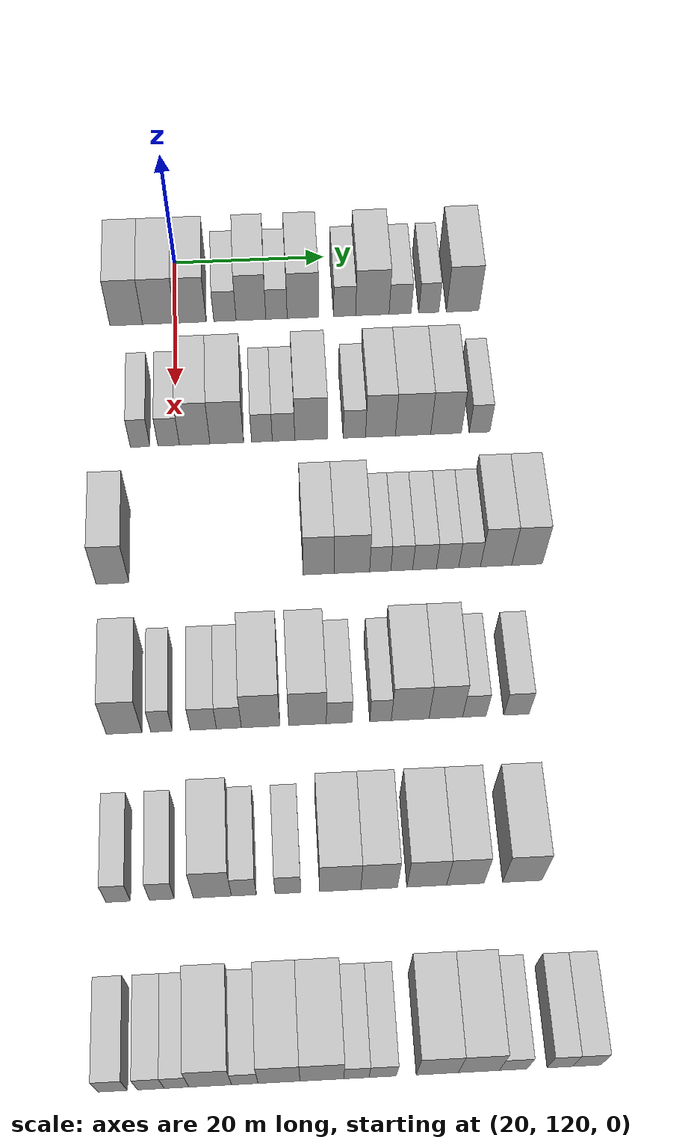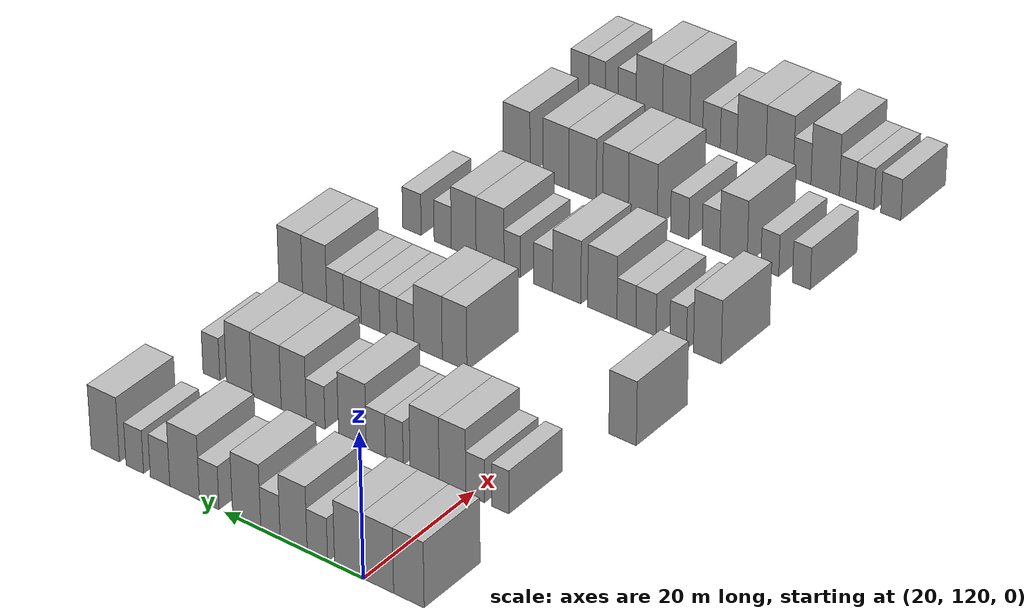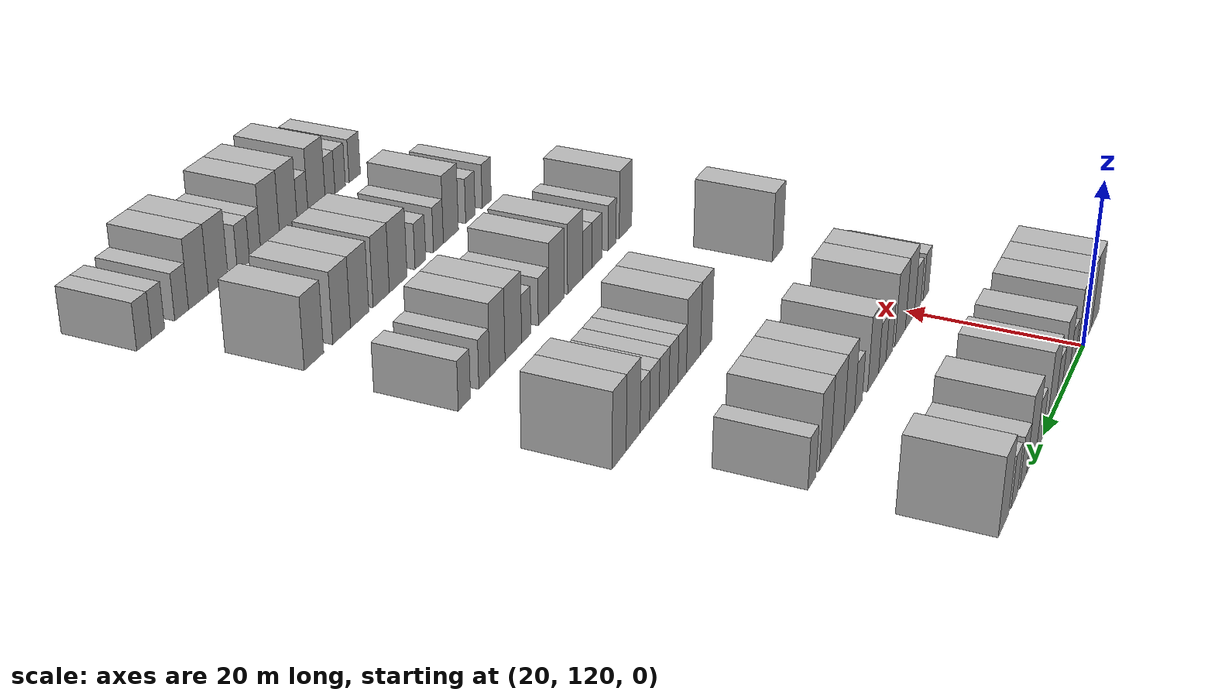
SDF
<sdf version="1.6">
 <world name="default">
  <model name="building_115">
   <static>1</static>
   <pose>25.0000 113.6145 0 0.000000 0.000000 0.000000</pose>
   <link name="link">
    <pose>0 0 4.50 0 0 0</pose>
    <collision name="collision"><geometry><box><size>10.0000 4.2600 9.0000</size></box></geometry></collision>
    <visual name="visual">
     <cast_shadows>0</cast_shadows>
     <geometry><box><size>10.0000 4.2600 9.0000</size></box></geometry>
     <material>
      <script>
       <uri>model://HANNAS_wall/materials/scripts</uri>
       <uri>model://HANNAS_wall/materials/textures</uri>
       <name>vrc/HANNAS_wall</name>
      </script>
     </material>
    </visual>
   </link>
  </model>
  <model name="building_116">
   <static>1</static>
   <pose>25.0000 117.8980 0 0.000000 0.000000 0.000000</pose>
   <link name="link">
    <pose>0 0 4.50 0 0 0</pose>
    <collision name="collision"><geometry><box><size>10.0000 4.3071 9.0000</size></box></geometry></collision>
    <visual name="visual">
     <cast_shadows>0</cast_shadows>
     <geometry><box><size>10.0000 4.3071 9.0000</size></box></geometry>
     <material>
      <script>
       <uri>model://HANNAS_wall/materials/scripts</uri>
       <uri>model://HANNAS_wall/materials/textures</uri>
       <name>vrc/HANNAS_wall</name>
      </script>
     </material>
    </visual>
   </link>
  </model>
  <model name="building_117">
   <static>1</static>
   <pose>25.0000 122.0608 0 0.000000 0.000000 0.000000</pose>
   <link name="link">
    <pose>0 0 4.50 0 0 0</pose>
    <collision name="collision"><geometry><box><size>10.0000 4.0184 9.0000</size></box></geometry></collision>
    <visual name="visual">
     <cast_shadows>0</cast_shadows>
     <geometry><box><size>10.0000 4.0184 9.0000</size></box></geometry>
     <material>
      <script>
       <uri>model://HANNAS_wall/materials/scripts</uri>
       <uri>model://HANNAS_wall/materials/textures</uri>
       <name>vrc/HANNAS_wall</name>
      </script>
     </material>
    </visual>
   </link>
  </model>
  <model name="building_118">
   <static>1</static>
   <pose>25.0000 126.5311 0 0.000000 0.000000 0.000000</pose>
   <link name="link">
    <pose>0 0 3.00 0 0 0</pose>
    <collision name="collision"><geometry><box><size>10.0000 2.9223 6.0000</size></box></geometry></collision>
    <visual name="visual">
     <cast_shadows>0</cast_shadows>
     <geometry><box><size>10.0000 2.9223 6.0000</size></box></geometry>
     <material>
      <script>
       <uri>model://HANNAS_wall/materials/scripts</uri>
       <uri>model://HANNAS_wall/materials/textures</uri>
       <name>vrc/HANNAS_wall</name>
      </script>
     </material>
    </visual>
   </link>
  </model>
  <model name="building_119">
   <static>1</static>
   <pose>25.0000 129.9398 0 0.000000 0.000000 0.000000</pose>
   <link name="link">
    <pose>0 0 4.50 0 0 0</pose>
    <collision name="collision"><geometry><box><size>10.0000 3.8950 9.0000</size></box></geometry></collision>
    <visual name="visual">
     <cast_shadows>0</cast_shadows>
     <geometry><box><size>10.0000 3.8950 9.0000</size></box></geometry>
     <material>
      <script>
       <uri>model://HANNAS_wall/materials/scripts</uri>
       <uri>model://HANNAS_wall/materials/textures</uri>
       <name>vrc/HANNAS_wall</name>
      </script>
     </material>
    </visual>
   </link>
  </model>
  <model name="building_120">
   <static>1</static>
   <pose>25.0000 133.2835 0 0.000000 0.000000 0.000000</pose>
   <link name="link">
    <pose>0 0 3.00 0 0 0</pose>
    <collision name="collision"><geometry><box><size>10.0000 2.7924 6.0000</size></box></geometry></collision>
    <visual name="visual">
     <cast_shadows>0</cast_shadows>
     <geometry><box><size>10.0000 2.7924 6.0000</size></box></geometry>
     <material>
      <script>
       <uri>model://HANNAS_wall/materials/scripts</uri>
       <uri>model://HANNAS_wall/materials/textures</uri>
       <name>vrc/HANNAS_wall</name>
      </script>
     </material>
    </visual>
   </link>
  </model>
  <model name="building_121">
   <static>1</static>
   <pose>25.0000 136.7344 0 0.000000 0.000000 0.000000</pose>
   <link name="link">
    <pose>0 0 4.50 0 0 0</pose>
    <collision name="collision"><geometry><box><size>10.0000 4.1093 9.0000</size></box></geometry></collision>
    <visual name="visual">
     <cast_shadows>0</cast_shadows>
     <geometry><box><size>10.0000 4.1093 9.0000</size></box></geometry>
     <material>
      <script>
       <uri>model://HANNAS_wall/materials/scripts</uri>
       <uri>model://HANNAS_wall/materials/textures</uri>
       <name>vrc/HANNAS_wall</name>
      </script>
     </material>
    </visual>
   </link>
  </model>
  <model name="building_122">
   <static>1</static>
   <pose>25.0000 142.2306 0 0.000000 0.000000 0.000000</pose>
   <link name="link">
    <pose>0 0 3.00 0 0 0</pose>
    <collision name="collision"><geometry><box><size>10.0000 2.8831 6.0000</size></box></geometry></collision>
    <visual name="visual">
     <cast_shadows>0</cast_shadows>
     <geometry><box><size>10.0000 2.8831 6.0000</size></box></geometry>
     <material>
      <script>
       <uri>model://HANNAS_wall/materials/scripts</uri>
       <uri>model://HANNAS_wall/materials/textures</uri>
       <name>vrc/HANNAS_wall</name>
      </script>
     </material>
    </visual>
   </link>
  </model>
  <model name="building_123">
   <static>1</static>
   <pose>25.0000 145.8740 0 0.000000 0.000000 0.000000</pose>
   <link name="link">
    <pose>0 0 4.50 0 0 0</pose>
    <collision name="collision"><geometry><box><size>10.0000 4.4038 9.0000</size></box></geometry></collision>
    <visual name="visual">
     <cast_shadows>0</cast_shadows>
     <geometry><box><size>10.0000 4.4038 9.0000</size></box></geometry>
     <material>
      <script>
       <uri>model://HANNAS_wall/materials/scripts</uri>
       <uri>model://HANNAS_wall/materials/textures</uri>
       <name>vrc/HANNAS_wall</name>
      </script>
     </material>
    </visual>
   </link>
  </model>
  <model name="building_124">
   <static>1</static>
   <pose>25.0000 149.5333 0 0.000000 0.000000 0.000000</pose>
   <link name="link">
    <pose>0 0 3.00 0 0 0</pose>
    <collision name="collision"><geometry><box><size>10.0000 2.9147 6.0000</size></box></geometry></collision>
    <visual name="visual">
     <cast_shadows>0</cast_shadows>
     <geometry><box><size>10.0000 2.9147 6.0000</size></box></geometry>
     <material>
      <script>
       <uri>model://HANNAS_wall/materials/scripts</uri>
       <uri>model://HANNAS_wall/materials/textures</uri>
       <name>vrc/HANNAS_wall</name>
      </script>
     </material>
    </visual>
   </link>
  </model>
  <model name="building_125">
   <static>1</static>
   <pose>25.0000 153.3127 0 0.000000 0.000000 0.000000</pose>
   <link name="link">
    <pose>0 0 3.00 0 0 0</pose>
    <collision name="collision"><geometry><box><size>10.0000 2.6441 6.0000</size></box></geometry></collision>
    <visual name="visual">
     <cast_shadows>0</cast_shadows>
     <geometry><box><size>10.0000 2.6441 6.0000</size></box></geometry>
     <material>
      <script>
       <uri>model://HANNAS_wall/materials/scripts</uri>
       <uri>model://HANNAS_wall/materials/textures</uri>
       <name>vrc/HANNAS_wall</name>
      </script>
     </material>
    </visual>
   </link>
  </model>
  <model name="building_126">
   <static>1</static>
   <pose>25.0000 157.7696 0 0.000000 0.000000 0.000000</pose>
   <link name="link">
    <pose>0 0 4.50 0 0 0</pose>
    <collision name="collision"><geometry><box><size>10.0000 4.2698 9.0000</size></box></geometry></collision>
    <visual name="visual">
     <cast_shadows>0</cast_shadows>
     <geometry><box><size>10.0000 4.2698 9.0000</size></box></geometry>
     <material>
      <script>
       <uri>model://HANNAS_wall/materials/scripts</uri>
       <uri>model://HANNAS_wall/materials/textures</uri>
       <name>vrc/HANNAS_wall</name>
      </script>
     </material>
    </visual>
   </link>
  </model>
  <model name="building_298">
   <static>1</static>
   <pose>44.0000 115.5905 0 0.000000 0.000000 0.000000</pose>
   <link name="link">
    <pose>0 0 3.00 0 0 0</pose>
    <collision name="collision"><geometry><box><size>10.0000 2.4350 6.0000</size></box></geometry></collision>
    <visual name="visual">
     <cast_shadows>0</cast_shadows>
     <geometry><box><size>10.0000 2.4350 6.0000</size></box></geometry>
     <material>
      <script>
       <uri>model://HANNAS_wall/materials/scripts</uri>
       <uri>model://HANNAS_wall/materials/textures</uri>
       <name>vrc/HANNAS_wall</name>
      </script>
     </material>
    </visual>
   </link>
  </model>
  <model name="building_299">
   <static>1</static>
   <pose>44.0000 119.1432 0 0.000000 0.000000 0.000000</pose>
   <link name="link">
    <pose>0 0 3.00 0 0 0</pose>
    <collision name="collision"><geometry><box><size>10.0000 2.6704 6.0000</size></box></geometry></collision>
    <visual name="visual">
     <cast_shadows>0</cast_shadows>
     <geometry><box><size>10.0000 2.6704 6.0000</size></box></geometry>
     <material>
      <script>
       <uri>model://HANNAS_wall/materials/scripts</uri>
       <uri>model://HANNAS_wall/materials/textures</uri>
       <name>vrc/HANNAS_wall</name>
      </script>
     </material>
    </visual>
   </link>
  </model>
  <model name="building_300">
   <static>1</static>
   <pose>44.0000 122.3847 0 0.000000 0.000000 0.000000</pose>
   <link name="link">
    <pose>0 0 4.50 0 0 0</pose>
    <collision name="collision"><geometry><box><size>10.0000 3.8125 9.0000</size></box></geometry></collision>
    <visual name="visual">
     <cast_shadows>0</cast_shadows>
     <geometry><box><size>10.0000 3.8125 9.0000</size></box></geometry>
     <material>
      <script>
       <uri>model://HANNAS_wall/materials/scripts</uri>
       <uri>model://HANNAS_wall/materials/textures</uri>
       <name>vrc/HANNAS_wall</name>
      </script>
     </material>
    </visual>
   </link>
  </model>
  <model name="building_301">
   <static>1</static>
   <pose>44.0000 126.3880 0 0.000000 0.000000 0.000000</pose>
   <link name="link">
    <pose>0 0 4.50 0 0 0</pose>
    <collision name="collision"><geometry><box><size>10.0000 4.1942 9.0000</size></box></geometry></collision>
    <visual name="visual">
     <cast_shadows>0</cast_shadows>
     <geometry><box><size>10.0000 4.1942 9.0000</size></box></geometry>
     <material>
      <script>
       <uri>model://HANNAS_wall/materials/scripts</uri>
       <uri>model://HANNAS_wall/materials/textures</uri>
       <name>vrc/HANNAS_wall</name>
      </script>
     </material>
    </visual>
   </link>
  </model>
  <model name="building_302">
   <static>1</static>
   <pose>44.0000 130.7755 0 0.000000 0.000000 0.000000</pose>
   <link name="link">
    <pose>0 0 3.00 0 0 0</pose>
    <collision name="collision"><geometry><box><size>10.0000 2.5808 6.0000</size></box></geometry></collision>
    <visual name="visual">
     <cast_shadows>0</cast_shadows>
     <geometry><box><size>10.0000 2.5808 6.0000</size></box></geometry>
     <material>
      <script>
       <uri>model://HANNAS_wall/materials/scripts</uri>
       <uri>model://HANNAS_wall/materials/textures</uri>
       <name>vrc/HANNAS_wall</name>
      </script>
     </material>
    </visual>
   </link>
  </model>
  <model name="building_303">
   <static>1</static>
   <pose>44.0000 133.4644 0 0.000000 0.000000 0.000000</pose>
   <link name="link">
    <pose>0 0 3.00 0 0 0</pose>
    <collision name="collision"><geometry><box><size>10.0000 2.7968 6.0000</size></box></geometry></collision>
    <visual name="visual">
     <cast_shadows>0</cast_shadows>
     <geometry><box><size>10.0000 2.7968 6.0000</size></box></geometry>
     <material>
      <script>
       <uri>model://HANNAS_wall/materials/scripts</uri>
       <uri>model://HANNAS_wall/materials/textures</uri>
       <name>vrc/HANNAS_wall</name>
      </script>
     </material>
    </visual>
   </link>
  </model>
  <model name="building_304">
   <static>1</static>
   <pose>44.0000 136.9016 0 0.000000 0.000000 0.000000</pose>
   <link name="link">
    <pose>0 0 4.50 0 0 0</pose>
    <collision name="collision"><geometry><box><size>10.0000 4.0778 9.0000</size></box></geometry></collision>
    <visual name="visual">
     <cast_shadows>0</cast_shadows>
     <geometry><box><size>10.0000 4.0778 9.0000</size></box></geometry>
     <material>
      <script>
       <uri>model://HANNAS_wall/materials/scripts</uri>
       <uri>model://HANNAS_wall/materials/textures</uri>
       <name>vrc/HANNAS_wall</name>
      </script>
     </material>
    </visual>
   </link>
  </model>
  <model name="building_305">
   <static>1</static>
   <pose>44.0000 142.3354 0 0.000000 0.000000 0.000000</pose>
   <link name="link">
    <pose>0 0 3.00 0 0 0</pose>
    <collision name="collision"><geometry><box><size>10.0000 2.7898 6.0000</size></box></geometry></collision>
    <visual name="visual">
     <cast_shadows>0</cast_shadows>
     <geometry><box><size>10.0000 2.7898 6.0000</size></box></geometry>
     <material>
      <script>
       <uri>model://HANNAS_wall/materials/scripts</uri>
       <uri>model://HANNAS_wall/materials/textures</uri>
       <name>vrc/HANNAS_wall</name>
      </script>
     </material>
    </visual>
   </link>
  </model>
  <model name="building_306">
   <static>1</static>
   <pose>44.0000 145.6039 0 0.000000 0.000000 0.000000</pose>
   <link name="link">
    <pose>0 0 4.50 0 0 0</pose>
    <collision name="collision"><geometry><box><size>10.0000 3.7473 9.0000</size></box></geometry></collision>
    <visual name="visual">
     <cast_shadows>0</cast_shadows>
     <geometry><box><size>10.0000 3.7473 9.0000</size></box></geometry>
     <material>
      <script>
       <uri>model://HANNAS_wall/materials/scripts</uri>
       <uri>model://HANNAS_wall/materials/textures</uri>
       <name>vrc/HANNAS_wall</name>
      </script>
     </material>
    </visual>
   </link>
  </model>
  <model name="building_307">
   <static>1</static>
   <pose>44.0000 149.6913 0 0.000000 0.000000 0.000000</pose>
   <link name="link">
    <pose>0 0 4.50 0 0 0</pose>
    <collision name="collision"><geometry><box><size>10.0000 4.4275 9.0000</size></box></geometry></collision>
    <visual name="visual">
     <cast_shadows>0</cast_shadows>
     <geometry><box><size>10.0000 4.4275 9.0000</size></box></geometry>
     <material>
      <script>
       <uri>model://HANNAS_wall/materials/scripts</uri>
       <uri>model://HANNAS_wall/materials/textures</uri>
       <name>vrc/HANNAS_wall</name>
      </script>
     </material>
    </visual>
   </link>
  </model>
  <model name="building_308">
   <static>1</static>
   <pose>44.0000 153.8310 0 0.000000 0.000000 0.000000</pose>
   <link name="link">
    <pose>0 0 4.50 0 0 0</pose>
    <collision name="collision"><geometry><box><size>10.0000 3.8520 9.0000</size></box></geometry></collision>
    <visual name="visual">
     <cast_shadows>0</cast_shadows>
     <geometry><box><size>10.0000 3.8520 9.0000</size></box></geometry>
     <material>
      <script>
       <uri>model://HANNAS_wall/materials/scripts</uri>
       <uri>model://HANNAS_wall/materials/textures</uri>
       <name>vrc/HANNAS_wall</name>
      </script>
     </material>
    </visual>
   </link>
  </model>
  <model name="building_309">
   <static>1</static>
   <pose>44.0000 158.0472 0 0.000000 0.000000 0.000000</pose>
   <link name="link">
    <pose>0 0 3.00 0 0 0</pose>
    <collision name="collision"><geometry><box><size>10.0000 2.5805 6.0000</size></box></geometry></collision>
    <visual name="visual">
     <cast_shadows>0</cast_shadows>
     <geometry><box><size>10.0000 2.5805 6.0000</size></box></geometry>
     <material>
      <script>
       <uri>model://HANNAS_wall/materials/scripts</uri>
       <uri>model://HANNAS_wall/materials/textures</uri>
       <name>vrc/HANNAS_wall</name>
      </script>
     </material>
    </visual>
   </link>
  </model>
  <model name="building_472">
   <static>1</static>
   <pose>63.0000 112.4885 0 0.000000 0.000000 0.000000</pose>
   <link name="link">
    <pose>0 0 4.50 0 0 0</pose>
    <collision name="collision"><geometry><box><size>10.0000 3.8822 9.0000</size></box></geometry></collision>
    <visual name="visual">
     <cast_shadows>0</cast_shadows>
     <geometry><box><size>10.0000 3.8822 9.0000</size></box></geometry>
     <material>
      <script>
       <uri>model://HANNAS_wall/materials/scripts</uri>
       <uri>model://HANNAS_wall/materials/textures</uri>
       <name>vrc/HANNAS_wall</name>
      </script>
     </material>
    </visual>
   </link>
  </model>
  <model name="building_473">
   <static>1</static>
   <pose>63.0000 136.8981 0 0.000000 0.000000 0.000000</pose>
   <link name="link">
    <pose>0 0 4.50 0 0 0</pose>
    <collision name="collision"><geometry><box><size>10.0000 3.6457 9.0000</size></box></geometry></collision>
    <visual name="visual">
     <cast_shadows>0</cast_shadows>
     <geometry><box><size>10.0000 3.6457 9.0000</size></box></geometry>
     <material>
      <script>
       <uri>model://HANNAS_wall/materials/scripts</uri>
       <uri>model://HANNAS_wall/materials/textures</uri>
       <name>vrc/HANNAS_wall</name>
      </script>
     </material>
    </visual>
   </link>
  </model>
  <model name="building_474">
   <static>1</static>
   <pose>63.0000 140.8406 0 0.000000 0.000000 0.000000</pose>
   <link name="link">
    <pose>0 0 4.50 0 0 0</pose>
    <collision name="collision"><geometry><box><size>10.0000 4.2393 9.0000</size></box></geometry></collision>
    <visual name="visual">
     <cast_shadows>0</cast_shadows>
     <geometry><box><size>10.0000 4.2393 9.0000</size></box></geometry>
     <material>
      <script>
       <uri>model://HANNAS_wall/materials/scripts</uri>
       <uri>model://HANNAS_wall/materials/textures</uri>
       <name>vrc/HANNAS_wall</name>
      </script>
     </material>
    </visual>
   </link>
  </model>
  <model name="building_475">
   <static>1</static>
   <pose>63.0000 144.2237 0 0.000000 0.000000 0.000000</pose>
   <link name="link">
    <pose>0 0 3.00 0 0 0</pose>
    <collision name="collision"><geometry><box><size>10.0000 2.5268 6.0000</size></box></geometry></collision>
    <visual name="visual">
     <cast_shadows>0</cast_shadows>
     <geometry><box><size>10.0000 2.5268 6.0000</size></box></geometry>
     <material>
      <script>
       <uri>model://HANNAS_wall/materials/scripts</uri>
       <uri>model://HANNAS_wall/materials/textures</uri>
       <name>vrc/HANNAS_wall</name>
      </script>
     </material>
    </visual>
   </link>
  </model>
  <model name="building_476">
   <static>1</static>
   <pose>63.0000 146.7887 0 0.000000 0.000000 0.000000</pose>
   <link name="link">
    <pose>0 0 3.00 0 0 0</pose>
    <collision name="collision"><geometry><box><size>10.0000 2.6033 6.0000</size></box></geometry></collision>
    <visual name="visual">
     <cast_shadows>0</cast_shadows>
     <geometry><box><size>10.0000 2.6033 6.0000</size></box></geometry>
     <material>
      <script>
       <uri>model://HANNAS_wall/materials/scripts</uri>
       <uri>model://HANNAS_wall/materials/textures</uri>
       <name>vrc/HANNAS_wall</name>
      </script>
     </material>
    </visual>
   </link>
  </model>
  <model name="building_477">
   <static>1</static>
   <pose>63.0000 149.5066 0 0.000000 0.000000 0.000000</pose>
   <link name="link">
    <pose>0 0 3.00 0 0 0</pose>
    <collision name="collision"><geometry><box><size>10.0000 2.8325 6.0000</size></box></geometry></collision>
    <visual name="visual">
     <cast_shadows>0</cast_shadows>
     <geometry><box><size>10.0000 2.8325 6.0000</size></box></geometry>
     <material>
      <script>
       <uri>model://HANNAS_wall/materials/scripts</uri>
       <uri>model://HANNAS_wall/materials/textures</uri>
       <name>vrc/HANNAS_wall</name>
      </script>
     </material>
    </visual>
   </link>
  </model>
  <model name="building_478">
   <static>1</static>
   <pose>63.0000 152.2543 0 0.000000 0.000000 0.000000</pose>
   <link name="link">
    <pose>0 0 3.00 0 0 0</pose>
    <collision name="collision"><geometry><box><size>10.0000 2.6630 6.0000</size></box></geometry></collision>
    <visual name="visual">
     <cast_shadows>0</cast_shadows>
     <geometry><box><size>10.0000 2.6630 6.0000</size></box></geometry>
     <material>
      <script>
       <uri>model://HANNAS_wall/materials/scripts</uri>
       <uri>model://HANNAS_wall/materials/textures</uri>
       <name>vrc/HANNAS_wall</name>
      </script>
     </material>
    </visual>
   </link>
  </model>
  <model name="building_479">
   <static>1</static>
   <pose>63.0000 154.8863 0 0.000000 0.000000 0.000000</pose>
   <link name="link">
    <pose>0 0 3.00 0 0 0</pose>
    <collision name="collision"><geometry><box><size>10.0000 2.6009 6.0000</size></box></geometry></collision>
    <visual name="visual">
     <cast_shadows>0</cast_shadows>
     <geometry><box><size>10.0000 2.6009 6.0000</size></box></geometry>
     <material>
      <script>
       <uri>model://HANNAS_wall/materials/scripts</uri>
       <uri>model://HANNAS_wall/materials/textures</uri>
       <name>vrc/HANNAS_wall</name>
      </script>
     </material>
    </visual>
   </link>
  </model>
  <model name="building_480">
   <static>1</static>
   <pose>63.0000 158.0498 0 0.000000 0.000000 0.000000</pose>
   <link name="link">
    <pose>0 0 4.50 0 0 0</pose>
    <collision name="collision"><geometry><box><size>10.0000 3.7262 9.0000</size></box></geometry></collision>
    <visual name="visual">
     <cast_shadows>0</cast_shadows>
     <geometry><box><size>10.0000 3.7262 9.0000</size></box></geometry>
     <material>
      <script>
       <uri>model://HANNAS_wall/materials/scripts</uri>
       <uri>model://HANNAS_wall/materials/textures</uri>
       <name>vrc/HANNAS_wall</name>
      </script>
     </material>
    </visual>
   </link>
  </model>
  <model name="building_481">
   <static>1</static>
   <pose>63.0000 161.7470 0 0.000000 0.000000 0.000000</pose>
   <link name="link">
    <pose>0 0 4.50 0 0 0</pose>
    <collision name="collision"><geometry><box><size>10.0000 3.6681 9.0000</size></box></geometry></collision>
    <visual name="visual">
     <cast_shadows>0</cast_shadows>
     <geometry><box><size>10.0000 3.6681 9.0000</size></box></geometry>
     <material>
      <script>
       <uri>model://HANNAS_wall/materials/scripts</uri>
       <uri>model://HANNAS_wall/materials/textures</uri>
       <name>vrc/HANNAS_wall</name>
      </script>
     </material>
    </visual>
   </link>
  </model>
  <model name="building_643">
   <static>1</static>
   <pose>82.0000 114.1121 0 0.000000 0.000000 0.000000</pose>
   <link name="link">
    <pose>0 0 4.50 0 0 0</pose>
    <collision name="collision"><geometry><box><size>10.0000 3.9850 9.0000</size></box></geometry></collision>
    <visual name="visual">
     <cast_shadows>0</cast_shadows>
     <geometry><box><size>10.0000 3.9850 9.0000</size></box></geometry>
     <material>
      <script>
       <uri>model://HANNAS_wall/materials/scripts</uri>
       <uri>model://HANNAS_wall/materials/textures</uri>
       <name>vrc/HANNAS_wall</name>
      </script>
     </material>
    </visual>
   </link>
  </model>
  <model name="building_644">
   <static>1</static>
   <pose>82.0000 118.3147 0 0.000000 0.000000 0.000000</pose>
   <link name="link">
    <pose>0 0 3.00 0 0 0</pose>
    <collision name="collision"><geometry><box><size>10.0000 2.4202 6.0000</size></box></geometry></collision>
    <visual name="visual">
     <cast_shadows>0</cast_shadows>
     <geometry><box><size>10.0000 2.4202 6.0000</size></box></geometry>
     <material>
      <script>
       <uri>model://HANNAS_wall/materials/scripts</uri>
       <uri>model://HANNAS_wall/materials/textures</uri>
       <name>vrc/HANNAS_wall</name>
      </script>
     </material>
    </visual>
   </link>
  </model>
  <model name="building_645">
   <static>1</static>
   <pose>82.0000 122.9939 0 0.000000 0.000000 0.000000</pose>
   <link name="link">
    <pose>0 0 3.00 0 0 0</pose>
    <collision name="collision"><geometry><box><size>10.0000 2.9382 6.0000</size></box></geometry></collision>
    <visual name="visual">
     <cast_shadows>0</cast_shadows>
     <geometry><box><size>10.0000 2.9382 6.0000</size></box></geometry>
     <material>
      <script>
       <uri>model://HANNAS_wall/materials/scripts</uri>
       <uri>model://HANNAS_wall/materials/textures</uri>
       <name>vrc/HANNAS_wall</name>
      </script>
     </material>
    </visual>
   </link>
  </model>
  <model name="building_646">
   <static>1</static>
   <pose>82.0000 125.8597 0 0.000000 0.000000 0.000000</pose>
   <link name="link">
    <pose>0 0 3.00 0 0 0</pose>
    <collision name="collision"><geometry><box><size>10.0000 2.7935 6.0000</size></box></geometry></collision>
    <visual name="visual">
     <cast_shadows>0</cast_shadows>
     <geometry><box><size>10.0000 2.7935 6.0000</size></box></geometry>
     <material>
      <script>
       <uri>model://HANNAS_wall/materials/scripts</uri>
       <uri>model://HANNAS_wall/materials/textures</uri>
       <name>vrc/HANNAS_wall</name>
      </script>
     </material>
    </visual>
   </link>
  </model>
  <model name="building_647">
   <static>1</static>
   <pose>82.0000 129.4201 0 0.000000 0.000000 0.000000</pose>
   <link name="link">
    <pose>0 0 4.50 0 0 0</pose>
    <collision name="collision"><geometry><box><size>10.0000 4.3273 9.0000</size></box></geometry></collision>
    <visual name="visual">
     <cast_shadows>0</cast_shadows>
     <geometry><box><size>10.0000 4.3273 9.0000</size></box></geometry>
     <material>
      <script>
       <uri>model://HANNAS_wall/materials/scripts</uri>
       <uri>model://HANNAS_wall/materials/textures</uri>
       <name>vrc/HANNAS_wall</name>
      </script>
     </material>
    </visual>
   </link>
  </model>
  <model name="building_648">
   <static>1</static>
   <pose>82.0000 134.7000 0 0.000000 0.000000 0.000000</pose>
   <link name="link">
    <pose>0 0 4.50 0 0 0</pose>
    <collision name="collision"><geometry><box><size>10.0000 4.2324 9.0000</size></box></geometry></collision>
    <visual name="visual">
     <cast_shadows>0</cast_shadows>
     <geometry><box><size>10.0000 4.2324 9.0000</size></box></geometry>
     <material>
      <script>
       <uri>model://HANNAS_wall/materials/scripts</uri>
       <uri>model://HANNAS_wall/materials/textures</uri>
       <name>vrc/HANNAS_wall</name>
      </script>
     </material>
    </visual>
   </link>
  </model>
  <model name="building_649">
   <static>1</static>
   <pose>82.0000 138.2605 0 0.000000 0.000000 0.000000</pose>
   <link name="link">
    <pose>0 0 3.00 0 0 0</pose>
    <collision name="collision"><geometry><box><size>10.0000 2.8887 6.0000</size></box></geometry></collision>
    <visual name="visual">
     <cast_shadows>0</cast_shadows>
     <geometry><box><size>10.0000 2.8887 6.0000</size></box></geometry>
     <material>
      <script>
       <uri>model://HANNAS_wall/materials/scripts</uri>
       <uri>model://HANNAS_wall/materials/textures</uri>
       <name>vrc/HANNAS_wall</name>
      </script>
     </material>
    </visual>
   </link>
  </model>
  <model name="building_650">
   <static>1</static>
   <pose>82.0000 142.9163 0 0.000000 0.000000 0.000000</pose>
   <link name="link">
    <pose>0 0 3.00 0 0 0</pose>
    <collision name="collision"><geometry><box><size>10.0000 2.4229 6.0000</size></box></geometry></collision>
    <visual name="visual">
     <cast_shadows>0</cast_shadows>
     <geometry><box><size>10.0000 2.4229 6.0000</size></box></geometry>
     <material>
      <script>
       <uri>model://HANNAS_wall/materials/scripts</uri>
       <uri>model://HANNAS_wall/materials/textures</uri>
       <name>vrc/HANNAS_wall</name>
      </script>
     </material>
    </visual>
   </link>
  </model>
  <model name="building_651">
   <static>1</static>
   <pose>82.0000 146.2595 0 0.000000 0.000000 0.000000</pose>
   <link name="link">
    <pose>0 0 4.50 0 0 0</pose>
    <collision name="collision"><geometry><box><size>10.0000 4.2635 9.0000</size></box></geometry></collision>
    <visual name="visual">
     <cast_shadows>0</cast_shadows>
     <geometry><box><size>10.0000 4.2635 9.0000</size></box></geometry>
     <material>
      <script>
       <uri>model://HANNAS_wall/materials/scripts</uri>
       <uri>model://HANNAS_wall/materials/textures</uri>
       <name>vrc/HANNAS_wall</name>
      </script>
     </material>
    </visual>
   </link>
  </model>
  <model name="building_652">
   <static>1</static>
   <pose>82.0000 150.2975 0 0.000000 0.000000 0.000000</pose>
   <link name="link">
    <pose>0 0 4.50 0 0 0</pose>
    <collision name="collision"><geometry><box><size>10.0000 3.8124 9.0000</size></box></geometry></collision>
    <visual name="visual">
     <cast_shadows>0</cast_shadows>
     <geometry><box><size>10.0000 3.8124 9.0000</size></box></geometry>
     <material>
      <script>
       <uri>model://HANNAS_wall/materials/scripts</uri>
       <uri>model://HANNAS_wall/materials/textures</uri>
       <name>vrc/HANNAS_wall</name>
      </script>
     </material>
    </visual>
   </link>
  </model>
  <model name="building_653">
   <static>1</static>
   <pose>82.0000 153.5294 0 0.000000 0.000000 0.000000</pose>
   <link name="link">
    <pose>0 0 3.00 0 0 0</pose>
    <collision name="collision"><geometry><box><size>10.0000 2.6515 6.0000</size></box></geometry></collision>
    <visual name="visual">
     <cast_shadows>0</cast_shadows>
     <geometry><box><size>10.0000 2.6515 6.0000</size></box></geometry>
     <material>
      <script>
       <uri>model://HANNAS_wall/materials/scripts</uri>
       <uri>model://HANNAS_wall/materials/textures</uri>
       <name>vrc/HANNAS_wall</name>
      </script>
     </material>
    </visual>
   </link>
  </model>
  <model name="building_654">
   <static>1</static>
   <pose>82.0000 158.2904 0 0.000000 0.000000 0.000000</pose>
   <link name="link">
    <pose>0 0 3.00 0 0 0</pose>
    <collision name="collision"><geometry><box><size>10.0000 2.8704 6.0000</size></box></geometry></collision>
    <visual name="visual">
     <cast_shadows>0</cast_shadows>
     <geometry><box><size>10.0000 2.8704 6.0000</size></box></geometry>
     <material>
      <script>
       <uri>model://HANNAS_wall/materials/scripts</uri>
       <uri>model://HANNAS_wall/materials/textures</uri>
       <name>vrc/HANNAS_wall</name>
      </script>
     </material>
    </visual>
   </link>
  </model>
  <model name="building_825">
   <static>1</static>
   <pose>101.0000 113.7495 0 0.000000 0.000000 0.000000</pose>
   <link name="link">
    <pose>0 0 3.00 0 0 0</pose>
    <collision name="collision"><geometry><box><size>10.0000 2.5950 6.0000</size></box></geometry></collision>
    <visual name="visual">
     <cast_shadows>0</cast_shadows>
     <geometry><box><size>10.0000 2.5950 6.0000</size></box></geometry>
     <material>
      <script>
       <uri>model://HANNAS_wall/materials/scripts</uri>
       <uri>model://HANNAS_wall/materials/textures</uri>
       <name>vrc/HANNAS_wall</name>
      </script>
     </material>
    </visual>
   </link>
  </model>
  <model name="building_826">
   <static>1</static>
   <pose>101.0000 118.3687 0 0.000000 0.000000 0.000000</pose>
   <link name="link">
    <pose>0 0 3.00 0 0 0</pose>
    <collision name="collision"><geometry><box><size>10.0000 2.6434 6.0000</size></box></geometry></collision>
    <visual name="visual">
     <cast_shadows>0</cast_shadows>
     <geometry><box><size>10.0000 2.6434 6.0000</size></box></geometry>
     <material>
      <script>
       <uri>model://HANNAS_wall/materials/scripts</uri>
       <uri>model://HANNAS_wall/materials/textures</uri>
       <name>vrc/HANNAS_wall</name>
      </script>
     </material>
    </visual>
   </link>
  </model>
  <model name="building_827">
   <static>1</static>
   <pose>101.0000 123.7113 0 0.000000 0.000000 0.000000</pose>
   <link name="link">
    <pose>0 0 4.50 0 0 0</pose>
    <collision name="collision"><geometry><box><size>10.0000 4.0419 9.0000</size></box></geometry></collision>
    <visual name="visual">
     <cast_shadows>0</cast_shadows>
     <geometry><box><size>10.0000 4.0419 9.0000</size></box></geometry>
     <material>
      <script>
       <uri>model://HANNAS_wall/materials/scripts</uri>
       <uri>model://HANNAS_wall/materials/textures</uri>
       <name>vrc/HANNAS_wall</name>
      </script>
     </material>
    </visual>
   </link>
  </model>
  <model name="building_828">
   <static>1</static>
   <pose>101.0000 127.0480 0 0.000000 0.000000 0.000000</pose>
   <link name="link">
    <pose>0 0 3.00 0 0 0</pose>
    <collision name="collision"><geometry><box><size>10.0000 2.6314 6.0000</size></box></geometry></collision>
    <visual name="visual">
     <cast_shadows>0</cast_shadows>
     <geometry><box><size>10.0000 2.6314 6.0000</size></box></geometry>
     <material>
      <script>
       <uri>model://HANNAS_wall/materials/scripts</uri>
       <uri>model://HANNAS_wall/materials/textures</uri>
       <name>vrc/HANNAS_wall</name>
      </script>
     </material>
    </visual>
   </link>
  </model>
  <model name="building_829">
   <static>1</static>
   <pose>101.0000 131.7326 0 0.000000 0.000000 0.000000</pose>
   <link name="link">
    <pose>0 0 3.00 0 0 0</pose>
    <collision name="collision"><geometry><box><size>10.0000 2.7377 6.0000</size></box></geometry></collision>
    <visual name="visual">
     <cast_shadows>0</cast_shadows>
     <geometry><box><size>10.0000 2.7377 6.0000</size></box></geometry>
     <material>
      <script>
       <uri>model://HANNAS_wall/materials/scripts</uri>
       <uri>model://HANNAS_wall/materials/textures</uri>
       <name>vrc/HANNAS_wall</name>
      </script>
     </material>
    </visual>
   </link>
  </model>
  <model name="building_830">
   <static>1</static>
   <pose>101.0000 137.2856 0 0.000000 0.000000 0.000000</pose>
   <link name="link">
    <pose>0 0 4.50 0 0 0</pose>
    <collision name="collision"><geometry><box><size>10.0000 4.3683 9.0000</size></box></geometry></collision>
    <visual name="visual">
     <cast_shadows>0</cast_shadows>
     <geometry><box><size>10.0000 4.3683 9.0000</size></box></geometry>
     <material>
      <script>
       <uri>model://HANNAS_wall/materials/scripts</uri>
       <uri>model://HANNAS_wall/materials/textures</uri>
       <name>vrc/HANNAS_wall</name>
      </script>
     </material>
    </visual>
   </link>
  </model>
  <model name="building_831">
   <static>1</static>
   <pose>101.0000 141.4234 0 0.000000 0.000000 0.000000</pose>
   <link name="link">
    <pose>0 0 4.50 0 0 0</pose>
    <collision name="collision"><geometry><box><size>10.0000 3.9073 9.0000</size></box></geometry></collision>
    <visual name="visual">
     <cast_shadows>0</cast_shadows>
     <geometry><box><size>10.0000 3.9073 9.0000</size></box></geometry>
     <material>
      <script>
       <uri>model://HANNAS_wall/materials/scripts</uri>
       <uri>model://HANNAS_wall/materials/textures</uri>
       <name>vrc/HANNAS_wall</name>
      </script>
     </material>
    </visual>
   </link>
  </model>
  <model name="building_832">
   <static>1</static>
   <pose>101.0000 146.5006 0 0.000000 0.000000 0.000000</pose>
   <link name="link">
    <pose>0 0 4.50 0 0 0</pose>
    <collision name="collision"><geometry><box><size>10.0000 4.2471 9.0000</size></box></geometry></collision>
    <visual name="visual">
     <cast_shadows>0</cast_shadows>
     <geometry><box><size>10.0000 4.2471 9.0000</size></box></geometry>
     <material>
      <script>
       <uri>model://HANNAS_wall/materials/scripts</uri>
       <uri>model://HANNAS_wall/materials/textures</uri>
       <name>vrc/HANNAS_wall</name>
      </script>
     </material>
    </visual>
   </link>
  </model>
  <model name="building_833">
   <static>1</static>
   <pose>101.0000 150.6209 0 0.000000 0.000000 0.000000</pose>
   <link name="link">
    <pose>0 0 4.50 0 0 0</pose>
    <collision name="collision"><geometry><box><size>10.0000 3.9934 9.0000</size></box></geometry></collision>
    <visual name="visual">
     <cast_shadows>0</cast_shadows>
     <geometry><box><size>10.0000 3.9934 9.0000</size></box></geometry>
     <material>
      <script>
       <uri>model://HANNAS_wall/materials/scripts</uri>
       <uri>model://HANNAS_wall/materials/textures</uri>
       <name>vrc/HANNAS_wall</name>
      </script>
     </material>
    </visual>
   </link>
  </model>
  <model name="building_834">
   <static>1</static>
   <pose>101.0000 156.7113 0 0.000000 0.000000 0.000000</pose>
   <link name="link">
    <pose>0 0 4.50 0 0 0</pose>
    <collision name="collision"><geometry><box><size>10.0000 4.1873 9.0000</size></box></geometry></collision>
    <visual name="visual">
     <cast_shadows>0</cast_shadows>
     <geometry><box><size>10.0000 4.1873 9.0000</size></box></geometry>
     <material>
      <script>
       <uri>model://HANNAS_wall/materials/scripts</uri>
       <uri>model://HANNAS_wall/materials/textures</uri>
       <name>vrc/HANNAS_wall</name>
      </script>
     </material>
    </visual>
   </link>
  </model>
  <model name="building_999">
   <static>1</static>
   <pose>120.0000 113.5005 0 0.000000 0.000000 0.000000</pose>
   <link name="link">
    <pose>0 0 3.00 0 0 0</pose>
    <collision name="collision"><geometry><box><size>10.0000 2.9377 6.0000</size></box></geometry></collision>
    <visual name="visual">
     <cast_shadows>0</cast_shadows>
     <geometry><box><size>10.0000 2.9377 6.0000</size></box></geometry>
     <material>
      <script>
       <uri>model://HANNAS_wall/materials/scripts</uri>
       <uri>model://HANNAS_wall/materials/textures</uri>
       <name>vrc/HANNAS_wall</name>
      </script>
     </material>
    </visual>
   </link>
  </model>
  <model name="building_1000">
   <static>1</static>
   <pose>120.0000 117.2982 0 0.000000 0.000000 0.000000</pose>
   <link name="link">
    <pose>0 0 3.00 0 0 0</pose>
    <collision name="collision"><geometry><box><size>10.0000 2.6578 6.0000</size></box></geometry></collision>
    <visual name="visual">
     <cast_shadows>0</cast_shadows>
     <geometry><box><size>10.0000 2.6578 6.0000</size></box></geometry>
     <material>
      <script>
       <uri>model://HANNAS_wall/materials/scripts</uri>
       <uri>model://HANNAS_wall/materials/textures</uri>
       <name>vrc/HANNAS_wall</name>
      </script>
     </material>
    </visual>
   </link>
  </model>
  <model name="building_1001">
   <static>1</static>
   <pose>120.0000 119.8570 0 0.000000 0.000000 0.000000</pose>
   <link name="link">
    <pose>0 0 3.00 0 0 0</pose>
    <collision name="collision"><geometry><box><size>10.0000 2.4598 6.0000</size></box></geometry></collision>
    <visual name="visual">
     <cast_shadows>0</cast_shadows>
     <geometry><box><size>10.0000 2.4598 6.0000</size></box></geometry>
     <material>
      <script>
       <uri>model://HANNAS_wall/materials/scripts</uri>
       <uri>model://HANNAS_wall/materials/textures</uri>
       <name>vrc/HANNAS_wall</name>
      </script>
     </material>
    </visual>
   </link>
  </model>
  <model name="building_1002">
   <static>1</static>
   <pose>120.0000 123.2155 0 0.000000 0.000000 0.000000</pose>
   <link name="link">
    <pose>0 0 4.50 0 0 0</pose>
    <collision name="collision"><geometry><box><size>10.0000 4.2572 9.0000</size></box></geometry></collision>
    <visual name="visual">
     <cast_shadows>0</cast_shadows>
     <geometry><box><size>10.0000 4.2572 9.0000</size></box></geometry>
     <material>
      <script>
       <uri>model://HANNAS_wall/materials/scripts</uri>
       <uri>model://HANNAS_wall/materials/textures</uri>
       <name>vrc/HANNAS_wall</name>
      </script>
     </material>
    </visual>
   </link>
  </model>
  <model name="building_1003">
   <static>1</static>
   <pose>120.0000 126.6655 0 0.000000 0.000000 0.000000</pose>
   <link name="link">
    <pose>0 0 3.00 0 0 0</pose>
    <collision name="collision"><geometry><box><size>10.0000 2.6428 6.0000</size></box></geometry></collision>
    <visual name="visual">
     <cast_shadows>0</cast_shadows>
     <geometry><box><size>10.0000 2.6428 6.0000</size></box></geometry>
     <material>
      <script>
       <uri>model://HANNAS_wall/materials/scripts</uri>
       <uri>model://HANNAS_wall/materials/textures</uri>
       <name>vrc/HANNAS_wall</name>
      </script>
     </material>
    </visual>
   </link>
  </model>
  <model name="building_1004">
   <static>1</static>
   <pose>120.0000 130.0772 0 0.000000 0.000000 0.000000</pose>
   <link name="link">
    <pose>0 0 4.50 0 0 0</pose>
    <collision name="collision"><geometry><box><size>10.0000 4.1807 9.0000</size></box></geometry></collision>
    <visual name="visual">
     <cast_shadows>0</cast_shadows>
     <geometry><box><size>10.0000 4.1807 9.0000</size></box></geometry>
     <material>
      <script>
       <uri>model://HANNAS_wall/materials/scripts</uri>
       <uri>model://HANNAS_wall/materials/textures</uri>
       <name>vrc/HANNAS_wall</name>
      </script>
     </material>
    </visual>
   </link>
  </model>
  <model name="building_1005">
   <static>1</static>
   <pose>120.0000 134.3522 0 0.000000 0.000000 0.000000</pose>
   <link name="link">
    <pose>0 0 4.50 0 0 0</pose>
    <collision name="collision"><geometry><box><size>10.0000 4.3693 9.0000</size></box></geometry></collision>
    <visual name="visual">
     <cast_shadows>0</cast_shadows>
     <geometry><box><size>10.0000 4.3693 9.0000</size></box></geometry>
     <material>
      <script>
       <uri>model://HANNAS_wall/materials/scripts</uri>
       <uri>model://HANNAS_wall/materials/textures</uri>
       <name>vrc/HANNAS_wall</name>
      </script>
     </material>
    </visual>
   </link>
  </model>
  <model name="building_1006">
   <static>1</static>
   <pose>120.0000 137.8106 0 0.000000 0.000000 0.000000</pose>
   <link name="link">
    <pose>0 0 3.00 0 0 0</pose>
    <collision name="collision"><geometry><box><size>10.0000 2.5476 6.0000</size></box></geometry></collision>
    <visual name="visual">
     <cast_shadows>0</cast_shadows>
     <geometry><box><size>10.0000 2.5476 6.0000</size></box></geometry>
     <material>
      <script>
       <uri>model://HANNAS_wall/materials/scripts</uri>
       <uri>model://HANNAS_wall/materials/textures</uri>
       <name>vrc/HANNAS_wall</name>
      </script>
     </material>
    </visual>
   </link>
  </model>
  <model name="building_1007">
   <static>1</static>
   <pose>120.0000 140.4500 0 0.000000 0.000000 0.000000</pose>
   <link name="link">
    <pose>0 0 3.00 0 0 0</pose>
    <collision name="collision"><geometry><box><size>10.0000 2.7312 6.0000</size></box></geometry></collision>
    <visual name="visual">
     <cast_shadows>0</cast_shadows>
     <geometry><box><size>10.0000 2.7312 6.0000</size></box></geometry>
     <material>
      <script>
       <uri>model://HANNAS_wall/materials/scripts</uri>
       <uri>model://HANNAS_wall/materials/textures</uri>
       <name>vrc/HANNAS_wall</name>
      </script>
     </material>
    </visual>
   </link>
  </model>
  <model name="building_1008">
   <static>1</static>
   <pose>120.0000 145.9347 0 0.000000 0.000000 0.000000</pose>
   <link name="link">
    <pose>0 0 4.50 0 0 0</pose>
    <collision name="collision"><geometry><box><size>10.0000 4.2382 9.0000</size></box></geometry></collision>
    <visual name="visual">
     <cast_shadows>0</cast_shadows>
     <geometry><box><size>10.0000 4.2382 9.0000</size></box></geometry>
     <material>
      <script>
       <uri>model://HANNAS_wall/materials/scripts</uri>
       <uri>model://HANNAS_wall/materials/textures</uri>
       <name>vrc/HANNAS_wall</name>
      </script>
     </material>
    </visual>
   </link>
  </model>
  <model name="building_1009">
   <static>1</static>
   <pose>120.0000 150.1165 0 0.000000 0.000000 0.000000</pose>
   <link name="link">
    <pose>0 0 4.50 0 0 0</pose>
    <collision name="collision"><geometry><box><size>10.0000 4.1253 9.0000</size></box></geometry></collision>
    <visual name="visual">
     <cast_shadows>0</cast_shadows>
     <geometry><box><size>10.0000 4.1253 9.0000</size></box></geometry>
     <material>
      <script>
       <uri>model://HANNAS_wall/materials/scripts</uri>
       <uri>model://HANNAS_wall/materials/textures</uri>
       <name>vrc/HANNAS_wall</name>
      </script>
     </material>
    </visual>
   </link>
  </model>
  <model name="building_1010">
   <static>1</static>
   <pose>120.0000 153.5862 0 0.000000 0.000000 0.000000</pose>
   <link name="link">
    <pose>0 0 3.00 0 0 0</pose>
    <collision name="collision"><geometry><box><size>10.0000 2.8141 6.0000</size></box></geometry></collision>
    <visual name="visual">
     <cast_shadows>0</cast_shadows>
     <geometry><box><size>10.0000 2.8141 6.0000</size></box></geometry>
     <material>
      <script>
       <uri>model://HANNAS_wall/materials/scripts</uri>
       <uri>model://HANNAS_wall/materials/textures</uri>
       <name>vrc/HANNAS_wall</name>
      </script>
     </material>
    </visual>
   </link>
  </model>
  <model name="building_1011">
   <static>1</static>
   <pose>120.0000 158.2974 0 0.000000 0.000000 0.000000</pose>
   <link name="link">
    <pose>0 0 3.00 0 0 0</pose>
    <collision name="collision"><geometry><box><size>10.0000 2.6084 6.0000</size></box></geometry></collision>
    <visual name="visual">
     <cast_shadows>0</cast_shadows>
     <geometry><box><size>10.0000 2.6084 6.0000</size></box></geometry>
     <material>
      <script>
       <uri>model://HANNAS_wall/materials/scripts</uri>
       <uri>model://HANNAS_wall/materials/textures</uri>
       <name>vrc/HANNAS_wall</name>
      </script>
     </material>
    </visual>
   </link>
  </model>
  <model name="building_1012">
   <static>1</static>
   <pose>120.0000 161.0237 0 0.000000 0.000000 0.000000</pose>
   <link name="link">
    <pose>0 0 3.00 0 0 0</pose>
    <collision name="collision"><geometry><box><size>10.0000 2.8440 6.0000</size></box></geometry></collision>
    <visual name="visual">
     <cast_shadows>0</cast_shadows>
     <geometry><box><size>10.0000 2.8440 6.0000</size></box></geometry>
     <material>
      <script>
       <uri>model://HANNAS_wall/materials/scripts</uri>
       <uri>model://HANNAS_wall/materials/textures</uri>
       <name>vrc/HANNAS_wall</name>
      </script>
     </material>
    </visual>
   </link>
  </model>
 </world>
</sdf>
